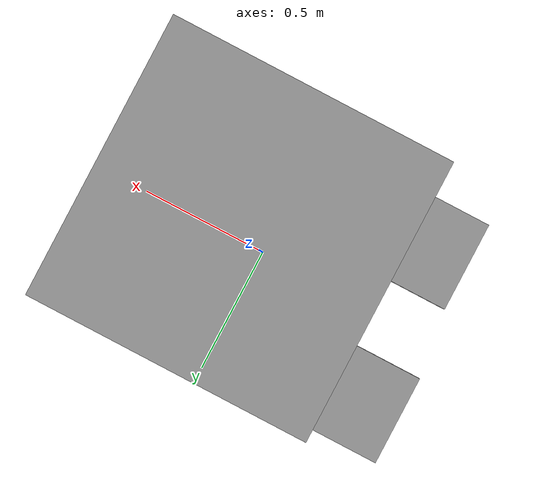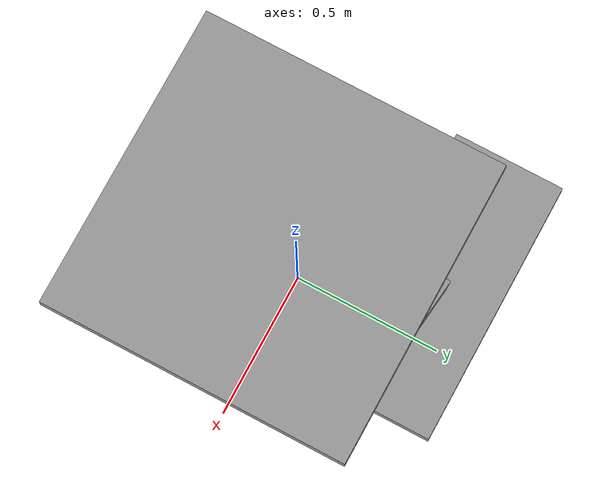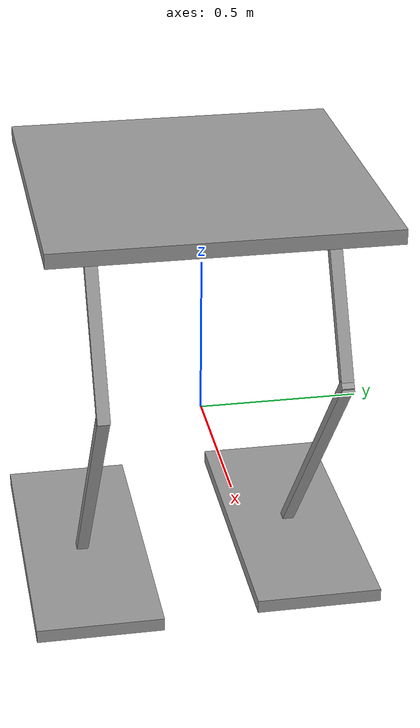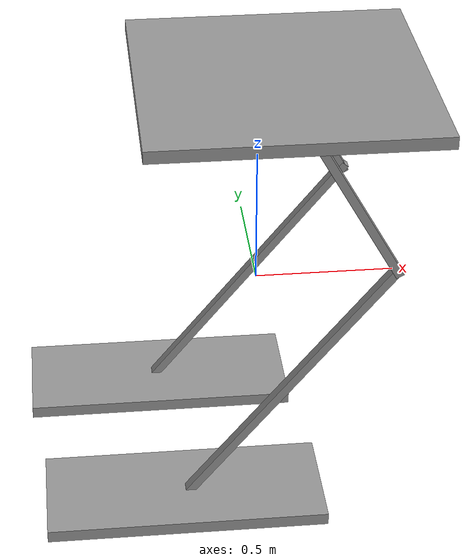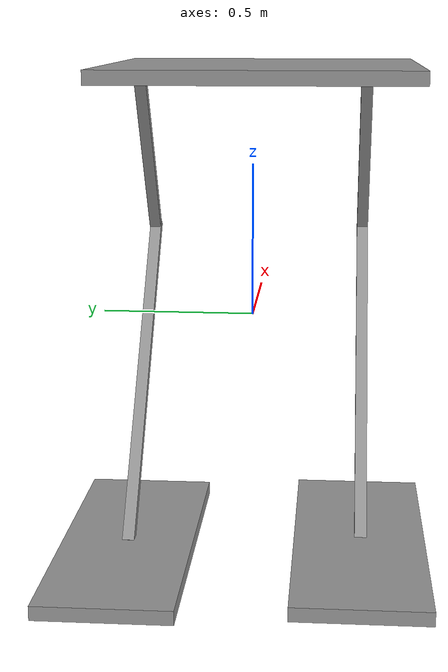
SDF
<?xml version='1.0'?>
<sdf version='1.6'>
  <model name='two_legged'>
    <link name='link_0'>
      <inertial>
        <mass>0.0442738</mass>
        <inertia>
          <ixx>0.00369672</ixx>
          <ixy>0</ixy>
          <ixz>0</ixz>
          <iyy>0.00369672</iyy>
          <iyz>0</iyz>
          <izz>0.00737897</izz>
        </inertia>
        <pose frame=''>0 0 0 0 -0 0</pose>
      </inertial>
      <pose frame=''>0.073454 -0.029564 0.794648 0 -0 0</pose>
      <visual name='visual'>
        <pose frame=''>0 0 0 0 -0 0</pose>
        <geometry>
          <box>
            <size>1 1 0.044271</size>
          </box>
        </geometry>
        <material>
          <lighting>1</lighting>
          <script>
            <uri>file://media/materials/scripts/gazebo.material</uri>
            <name>Gazebo/Grey</name>
          </script>
          <shader type='pixel'/>
          <emissive>0 0 0 1</emissive>
        </material>
        <transparency>0</transparency>
        <cast_shadows>1</cast_shadows>
      </visual>
      <collision name='collision'>
        <laser_retro>0</laser_retro>
        <max_contacts>10</max_contacts>
        <pose frame=''>0 0 0 0 -0 0</pose>
        <geometry>
          <box>
            <size>1 1 0.044271</size>
          </box>
        </geometry>
        <surface>
          <friction>
            <ode>
              <mu>1</mu>
              <mu2>1</mu2>
              <fdir1>0 0 0</fdir1>
              <slip1>0</slip1>
              <slip2>0</slip2>
            </ode>
            <torsional>
              <coefficient>1</coefficient>
              <patch_radius>0</patch_radius>
              <surface_radius>0</surface_radius>
              <use_patch_radius>1</use_patch_radius>
              <ode>
                <slip>0</slip>
              </ode>
            </torsional>
          </friction>
          <bounce>
            <restitution_coefficient>0</restitution_coefficient>
            <threshold>1e+06</threshold>
          </bounce>
          <contact>
            <collide_without_contact>0</collide_without_contact>
            <collide_without_contact_bitmask>1</collide_without_contact_bitmask>
            <collide_bitmask>1</collide_bitmask>
            <ode>
              <soft_cfm>0</soft_cfm>
              <soft_erp>0.2</soft_erp>
              <kp>1e+13</kp>
              <kd>1</kd>
              <max_vel>0.01</max_vel>
              <min_depth>0</min_depth>
            </ode>
            <bullet>
              <split_impulse>1</split_impulse>
              <split_impulse_penetration_threshold>-0.01</split_impulse_penetration_threshold>
              <soft_cfm>0</soft_cfm>
              <soft_erp>0.2</soft_erp>
              <kp>1e+13</kp>
              <kd>1</kd>
            </bullet>
          </contact>
        </surface>
      </collision>
    </link>
    <link name='link_0_clone'>
      <inertial>
        <mass>0.0184083</mass>
        <inertia>
          <ixx>0.000268196</ixx>
          <ixy>0</ixy>
          <ixz>0</ixz>
          <iyy>0.00153703</iyy>
          <iyz>0</iyz>
          <izz>0.00179921</izz>
        </inertia>
        <pose frame=''>0 0 0 0 -0 0</pose>
      </inertial>
      <pose frame=''>-0.298186 -0.361094 -0.683213 0 -0 0</pose>
      <visual name='visual'>
        <pose frame=''>0 0 0 0 -0 0</pose>
        <geometry>
          <box>
            <size>1 0.415778 0.044271</size>
          </box>
        </geometry>
        <material>
          <lighting>1</lighting>
          <script>
            <uri>file://media/materials/scripts/gazebo.material</uri>
            <name>Gazebo/Grey</name>
          </script>
          <shader type='pixel'/>
          <emissive>0 0 0 1</emissive>
        </material>
        <transparency>0</transparency>
        <cast_shadows>1</cast_shadows>
      </visual>
      <collision name='collision'>
        <laser_retro>0</laser_retro>
        <max_contacts>10</max_contacts>
        <pose frame=''>0 0 0 0 -0 0</pose>
        <geometry>
          <box>
            <size>1 0.415778 0.044271</size>
          </box>
        </geometry>
        <surface>
          <friction>
            <ode>
              <mu>1</mu>
              <mu2>1</mu2>
              <fdir1>0 0 0</fdir1>
              <slip1>0</slip1>
              <slip2>0</slip2>
            </ode>
            <torsional>
              <coefficient>1</coefficient>
              <patch_radius>0</patch_radius>
              <surface_radius>0</surface_radius>
              <use_patch_radius>1</use_patch_radius>
              <ode>
                <slip>0</slip>
              </ode>
            </torsional>
          </friction>
          <bounce>
            <restitution_coefficient>0</restitution_coefficient>
            <threshold>1e+06</threshold>
          </bounce>
          <contact>
            <collide_without_contact>0</collide_without_contact>
            <collide_without_contact_bitmask>1</collide_without_contact_bitmask>
            <collide_bitmask>1</collide_bitmask>
            <ode>
              <soft_cfm>0</soft_cfm>
              <soft_erp>0.2</soft_erp>
              <kp>1e+13</kp>
              <kd>1</kd>
              <max_vel>0.01</max_vel>
              <min_depth>0</min_depth>
            </ode>
            <bullet>
              <split_impulse>1</split_impulse>
              <split_impulse_penetration_threshold>-0.01</split_impulse_penetration_threshold>
              <soft_cfm>0</soft_cfm>
              <soft_erp>0.2</soft_erp>
              <kp>1e+13</kp>
              <kd>1</kd>
            </bullet>
          </contact>
        </surface>
      </collision>
    </link>
    <link name='link_0_clone_clone'>
      <inertial>
        <mass>0.0184083</mass>
        <inertia>
          <ixx>0.000268196</ixx>
          <ixy>0</ixy>
          <ixz>0</ixz>
          <iyy>0.00153703</iyy>
          <iyz>0</iyz>
          <izz>0.00179921</izz>
        </inertia>
        <pose frame=''>0 0 0 0 -0 0</pose>
      </inertial>
      <pose frame=''>-0.343944 0.373874 -0.683714 0 -0 0</pose>
      <visual name='visual'>
        <pose frame=''>0 0 0 0 -0 0</pose>
        <geometry>
          <box>
            <size>1 0.415778 0.044271</size>
          </box>
        </geometry>
        <material>
          <lighting>1</lighting>
          <script>
            <uri>file://media/materials/scripts/gazebo.material</uri>
            <name>Gazebo/Grey</name>
          </script>
          <shader type='pixel'/>
          <emissive>0 0 0 1</emissive>
        </material>
        <transparency>0</transparency>
        <cast_shadows>1</cast_shadows>
      </visual>
      <collision name='collision'>
        <laser_retro>0</laser_retro>
        <max_contacts>10</max_contacts>
        <pose frame=''>0 0 0 0 -0 0</pose>
        <geometry>
          <box>
            <size>1 0.415778 0.044271</size>
          </box>
        </geometry>
        <surface>
          <friction>
            <ode>
              <mu>1</mu>
              <mu2>1</mu2>
              <fdir1>0 0 0</fdir1>
              <slip1>0</slip1>
              <slip2>0</slip2>
            </ode>
            <torsional>
              <coefficient>1</coefficient>
              <patch_radius>0</patch_radius>
              <surface_radius>0</surface_radius>
              <use_patch_radius>1</use_patch_radius>
              <ode>
                <slip>0</slip>
              </ode>
            </torsional>
          </friction>
          <bounce>
            <restitution_coefficient>0</restitution_coefficient>
            <threshold>1e+06</threshold>
          </bounce>
          <contact>
            <collide_without_contact>0</collide_without_contact>
            <collide_without_contact_bitmask>1</collide_without_contact_bitmask>
            <collide_bitmask>1</collide_bitmask>
            <ode>
              <soft_cfm>0</soft_cfm>
              <soft_erp>0.2</soft_erp>
              <kp>1e+13</kp>
              <kd>1</kd>
              <max_vel>0.01</max_vel>
              <min_depth>0</min_depth>
            </ode>
            <bullet>
              <split_impulse>1</split_impulse>
              <split_impulse_penetration_threshold>-0.01</split_impulse_penetration_threshold>
              <soft_cfm>0</soft_cfm>
              <soft_erp>0.2</soft_erp>
              <kp>1e+13</kp>
              <kd>1</kd>
            </bullet>
          </contact>
        </surface>
      </collision>
    </link>
    <link name='link_2'>
      <inertial>
        <mass>0.000787082</mass>
        <inertia>
          <ixx>3.04398e-05</ixx>
          <ixy>0</ixy>
          <ixz>0</ixz>
          <iyy>3.04023e-05</iyy>
          <iyz>0</iyz>
          <izz>1.57027e-07</izz>
        </inertia>
        <pose frame=''>0 0 0 0 -0 0</pose>
      </inertial>
      <pose frame=''>0.207317 0.374796 0.508768 0 -0.51852 0</pose>
      <visual name='visual'>
        <pose frame=''>0 0 0 0 -0 0</pose>
        <geometry>
          <box>
            <size>0.030184 0.03851 0.680153</size>
          </box>
        </geometry>
        <material>
          <lighting>1</lighting>
          <script>
            <uri>file://media/materials/scripts/gazebo.material</uri>
            <name>Gazebo/Grey</name>
          </script>
          <shader type='pixel'/>
          <emissive>0 0 0 1</emissive>
        </material>
        <transparency>0</transparency>
        <cast_shadows>1</cast_shadows>
      </visual>
      <collision name='collision'>
        <laser_retro>0</laser_retro>
        <max_contacts>10</max_contacts>
        <pose frame=''>0 0 0 0 -0 0</pose>
        <geometry>
          <box>
            <size>0.030184 0.03851 0.680153</size>
          </box>
        </geometry>
        <surface>
          <friction>
            <ode>
              <mu>1</mu>
              <mu2>1</mu2>
              <fdir1>0 0 0</fdir1>
              <slip1>0</slip1>
              <slip2>0</slip2>
            </ode>
            <torsional>
              <coefficient>1</coefficient>
              <patch_radius>0</patch_radius>
              <surface_radius>0</surface_radius>
              <use_patch_radius>1</use_patch_radius>
              <ode>
                <slip>0</slip>
              </ode>
            </torsional>
          </friction>
          <bounce>
            <restitution_coefficient>0</restitution_coefficient>
            <threshold>1e+06</threshold>
          </bounce>
          <contact>
            <collide_without_contact>0</collide_without_contact>
            <collide_without_contact_bitmask>1</collide_without_contact_bitmask>
            <collide_bitmask>1</collide_bitmask>
            <ode>
              <soft_cfm>0</soft_cfm>
              <soft_erp>0.2</soft_erp>
              <kp>1e+13</kp>
              <kd>1</kd>
              <max_vel>0.01</max_vel>
              <min_depth>0</min_depth>
            </ode>
            <bullet>
              <split_impulse>1</split_impulse>
              <split_impulse_penetration_threshold>-0.01</split_impulse_penetration_threshold>
              <soft_cfm>0</soft_cfm>
              <soft_erp>0.2</soft_erp>
              <kp>1e+13</kp>
              <kd>1</kd>
            </bullet>
          </contact>
        </surface>
      </collision>
    </link>
    <link name='link_2_clone'>
      <inertial>
        <mass>0.000787082</mass>
        <inertia>
          <ixx>3.04398e-05</ixx>
          <ixy>0</ixy>
          <ixz>0</ixz>
          <iyy>3.04023e-05</iyy>
          <iyz>0</iyz>
          <izz>1.57027e-07</izz>
        </inertia>
        <pose frame=''>0 0 0 0 -0 0</pose>
      </inertial>
      <pose frame=''>0.278534 -0.365944 0.506585 0 -0.51852 0</pose>
      <visual name='visual'>
        <pose frame=''>0 0 0 0 -0 0</pose>
        <geometry>
          <box>
            <size>0.030184 0.03851 0.680153</size>
          </box>
        </geometry>
        <material>
          <lighting>1</lighting>
          <script>
            <uri>file://media/materials/scripts/gazebo.material</uri>
            <name>Gazebo/Grey</name>
          </script>
          <shader type='pixel'/>
          <emissive>0 0 0 1</emissive>
        </material>
        <transparency>0</transparency>
        <cast_shadows>1</cast_shadows>
      </visual>
      <collision name='collision'>
        <laser_retro>0</laser_retro>
        <max_contacts>10</max_contacts>
        <pose frame=''>0 0 0 0 -0 0</pose>
        <geometry>
          <box>
            <size>0.030184 0.03851 0.680153</size>
          </box>
        </geometry>
        <surface>
          <friction>
            <ode>
              <mu>1</mu>
              <mu2>1</mu2>
              <fdir1>0 0 0</fdir1>
              <slip1>0</slip1>
              <slip2>0</slip2>
            </ode>
            <torsional>
              <coefficient>1</coefficient>
              <patch_radius>0</patch_radius>
              <surface_radius>0</surface_radius>
              <use_patch_radius>1</use_patch_radius>
              <ode>
                <slip>0</slip>
              </ode>
            </torsional>
          </friction>
          <bounce>
            <restitution_coefficient>0</restitution_coefficient>
            <threshold>1e+06</threshold>
          </bounce>
          <contact>
            <collide_without_contact>0</collide_without_contact>
            <collide_without_contact_bitmask>1</collide_without_contact_bitmask>
            <collide_bitmask>1</collide_bitmask>
            <ode>
              <soft_cfm>0</soft_cfm>
              <soft_erp>0.2</soft_erp>
              <kp>1e+13</kp>
              <kd>1</kd>
              <max_vel>0.01</max_vel>
              <min_depth>0</min_depth>
            </ode>
            <bullet>
              <split_impulse>1</split_impulse>
              <split_impulse_penetration_threshold>-0.01</split_impulse_penetration_threshold>
              <soft_cfm>0</soft_cfm>
              <soft_erp>0.2</soft_erp>
              <kp>1e+13</kp>
              <kd>1</kd>
            </bullet>
          </contact>
        </surface>
      </collision>
    </link>
    <link name='link_2_clone_clone'>
      <inertial>
        <mass>0.00135713</mass>
        <inertia>
          <ixx>0.000155711</ixx>
          <ixy>0</ixy>
          <ixz>0</ixz>
          <iyy>0.000155647</iyy>
          <iyz>0</iyz>
          <izz>2.70758e-07</izz>
        </inertia>
        <pose frame=''>0 0 0 0 -0 0</pose>
      </inertial>
      <pose frame=''>0.072134 -0.365942 -0.229783 0 0.676585 0</pose>
      <visual name='visual'>
        <pose frame=''>0 0 0 0 -0 0</pose>
        <geometry>
          <box>
            <size>0.030184 0.03851 1.17275</size>
          </box>
        </geometry>
        <material>
          <lighting>1</lighting>
          <script>
            <uri>file://media/materials/scripts/gazebo.material</uri>
            <name>Gazebo/Grey</name>
          </script>
          <shader type='pixel'/>
          <emissive>0 0 0 1</emissive>
        </material>
        <transparency>0</transparency>
        <cast_shadows>1</cast_shadows>
      </visual>
      <collision name='collision'>
        <laser_retro>0</laser_retro>
        <max_contacts>10</max_contacts>
        <pose frame=''>0 0 0 0 -0 0</pose>
        <geometry>
          <box>
            <size>0.030184 0.03851 1.17275</size>
          </box>
        </geometry>
        <surface>
          <friction>
            <ode>
              <mu>1</mu>
              <mu2>1</mu2>
              <fdir1>0 0 0</fdir1>
              <slip1>0</slip1>
              <slip2>0</slip2>
            </ode>
            <torsional>
              <coefficient>1</coefficient>
              <patch_radius>0</patch_radius>
              <surface_radius>0</surface_radius>
              <use_patch_radius>1</use_patch_radius>
              <ode>
                <slip>0</slip>
              </ode>
            </torsional>
          </friction>
          <bounce>
            <restitution_coefficient>0</restitution_coefficient>
            <threshold>1e+06</threshold>
          </bounce>
          <contact>
            <collide_without_contact>0</collide_without_contact>
            <collide_without_contact_bitmask>1</collide_without_contact_bitmask>
            <collide_bitmask>1</collide_bitmask>
            <ode>
              <soft_cfm>0</soft_cfm>
              <soft_erp>0.2</soft_erp>
              <kp>1e+13</kp>
              <kd>1</kd>
              <max_vel>0.01</max_vel>
              <min_depth>0</min_depth>
            </ode>
            <bullet>
              <split_impulse>1</split_impulse>
              <split_impulse_penetration_threshold>-0.01</split_impulse_penetration_threshold>
              <soft_cfm>0</soft_cfm>
              <soft_erp>0.2</soft_erp>
              <kp>1e+13</kp>
              <kd>1</kd>
            </bullet>
          </contact>
        </surface>
      </collision>
    </link>
    <link name='link_2_clone_clone_clone'>
      <inertial>
        <mass>0.00135713</mass>
        <inertia>
          <ixx>0.000155711</ixx>
          <ixy>0</ixy>
          <ixz>0</ixz>
          <iyy>0.000155647</iyy>
          <iyz>0</iyz>
          <izz>2.70758e-07</izz>
        </inertia>
        <pose frame=''>0 0 0 0 -0 0</pose>
      </inertial>
      <pose frame=''>0.010691 0.373874 -0.213294 0 0.676585 0</pose>
      <visual name='visual'>
        <pose frame=''>0 0 0 0 -0 0</pose>
        <geometry>
          <box>
            <size>0.030184 0.03851 1.17275</size>
          </box>
        </geometry>
        <material>
          <lighting>1</lighting>
          <script>
            <uri>file://media/materials/scripts/gazebo.material</uri>
            <name>Gazebo/Grey</name>
          </script>
          <shader type='pixel'/>
          <emissive>0 0 0 1</emissive>
        </material>
        <transparency>0</transparency>
        <cast_shadows>1</cast_shadows>
      </visual>
      <collision name='collision'>
        <laser_retro>0</laser_retro>
        <max_contacts>10</max_contacts>
        <pose frame=''>0 0 0 0 -0 0</pose>
        <geometry>
          <box>
            <size>0.030184 0.03851 1.17275</size>
          </box>
        </geometry>
        <surface>
          <friction>
            <ode>
              <mu>1</mu>
              <mu2>1</mu2>
              <fdir1>0 0 0</fdir1>
              <slip1>0</slip1>
              <slip2>0</slip2>
            </ode>
            <torsional>
              <coefficient>1</coefficient>
              <patch_radius>0</patch_radius>
              <surface_radius>0</surface_radius>
              <use_patch_radius>1</use_patch_radius>
              <ode>
                <slip>0</slip>
              </ode>
            </torsional>
          </friction>
          <bounce>
            <restitution_coefficient>0</restitution_coefficient>
            <threshold>1e+06</threshold>
          </bounce>
          <contact>
            <collide_without_contact>0</collide_without_contact>
            <collide_without_contact_bitmask>1</collide_without_contact_bitmask>
            <collide_bitmask>1</collide_bitmask>
            <ode>
              <soft_cfm>0</soft_cfm>
              <soft_erp>0.2</soft_erp>
              <kp>1e+13</kp>
              <kd>1</kd>
              <max_vel>0.01</max_vel>
              <min_depth>0</min_depth>
            </ode>
            <bullet>
              <split_impulse>1</split_impulse>
              <split_impulse_penetration_threshold>-0.01</split_impulse_penetration_threshold>
              <soft_cfm>0</soft_cfm>
              <soft_erp>0.2</soft_erp>
              <kp>1e+13</kp>
              <kd>1</kd>
            </bullet>
          </contact>
        </surface>
      </collision>
    </link>
    <joint name='link_0_JOINT_0' type='revolute'>
      <parent>link_0</parent>
      <child>link_2</child>
      <pose frame=''>0 0 0 0 -0 0</pose>
      <axis>
        <xyz>0 1 0</xyz>
        <use_parent_model_frame>0</use_parent_model_frame>
        <limit>
          <lower>-1.79769e+308</lower>
          <upper>1.79769e+308</upper>
          <effort>-1</effort>
          <velocity>-1</velocity>
        </limit>
        <dynamics>
          <spring_reference>0</spring_reference>
          <spring_stiffness>0</spring_stiffness>
          <damping>0</damping>
        </dynamics>
      </axis>
      <physics>
        <ode>
          <limit>
            <cfm>0</cfm>
            <erp>0.2</erp>
          </limit>
          <suspension>
            <cfm>0</cfm>
            <erp>0.2</erp>
          </suspension>
        </ode>
      </physics>
    </joint>
    <joint name='link_0_JOINT_1' type='revolute'>
      <parent>link_0</parent>
      <child>link_2_clone</child>
      <pose frame=''>0 0 0 0 -0 0</pose>
      <axis>
        <xyz>0 1 0</xyz>
        <use_parent_model_frame>0</use_parent_model_frame>
        <limit>
          <lower>-1.79769e+308</lower>
          <upper>1.79769e+308</upper>
          <effort>-1</effort>
          <velocity>-1</velocity>
        </limit>
        <dynamics>
          <spring_reference>0</spring_reference>
          <spring_stiffness>0</spring_stiffness>
          <damping>0</damping>
        </dynamics>
      </axis>
      <physics>
        <ode>
          <limit>
            <cfm>0</cfm>
            <erp>0.2</erp>
          </limit>
          <suspension>
            <cfm>0</cfm>
            <erp>0.2</erp>
          </suspension>
        </ode>
      </physics>
    </joint>
    <joint name='link_0_clone_JOINT_4' type='fixed'>
      <parent>link_0_clone</parent>
      <child>link_2_clone_clone</child>
      <pose frame=''>0 0 0 0 -0 0</pose>
      <physics>
        <ode>
          <limit>
            <cfm>0</cfm>
            <erp>0.2</erp>
          </limit>
          <suspension>
            <cfm>0</cfm>
            <erp>0.2</erp>
          </suspension>
        </ode>
      </physics>
    </joint>
    <joint name='link_0_clone_clone_JOINT_5' type='fixed'>
      <parent>link_0_clone_clone</parent>
      <child>link_2_clone_clone_clone</child>
      <pose frame=''>0 0 0 0 -0 0</pose>
      <physics>
        <ode>
          <limit>
            <cfm>0</cfm>
            <erp>0.2</erp>
          </limit>
          <suspension>
            <cfm>0</cfm>
            <erp>0.2</erp>
          </suspension>
        </ode>
      </physics>
    </joint>
    <joint name='link_2_JOINT_3' type='revolute'>
      <parent>link_2</parent>
      <child>link_2_clone_clone_clone</child>
      <pose frame=''>0 0 0 0 -0 0</pose>
      <axis>
        <xyz>0 1 0</xyz>
        <use_parent_model_frame>0</use_parent_model_frame>
        <limit>
          <lower>-1.79769e+308</lower>
          <upper>1.79769e+308</upper>
          <effort>-1</effort>
          <velocity>-1</velocity>
        </limit>
        <dynamics>
          <spring_reference>0</spring_reference>
          <spring_stiffness>0</spring_stiffness>
          <damping>0</damping>
        </dynamics>
      </axis>
      <physics>
        <ode>
          <limit>
            <cfm>0</cfm>
            <erp>0.2</erp>
          </limit>
          <suspension>
            <cfm>0</cfm>
            <erp>0.2</erp>
          </suspension>
        </ode>
      </physics>
    </joint>
    <joint name='link_2_clone_JOINT_2' type='revolute'>
      <parent>link_2_clone</parent>
      <child>link_2_clone_clone</child>
      <pose frame=''>0 0 0 0 -0 0</pose>
      <axis>
        <xyz>0 1 0</xyz>
        <use_parent_model_frame>0</use_parent_model_frame>
        <limit>
          <lower>-1.79769e+308</lower>
          <upper>1.79769e+308</upper>
          <effort>-1</effort>
          <velocity>-1</velocity>
        </limit>
        <dynamics>
          <spring_reference>0</spring_reference>
          <spring_stiffness>0</spring_stiffness>
          <damping>0</damping>
        </dynamics>
      </axis>
      <physics>
        <ode>
          <limit>
            <cfm>0</cfm>
            <erp>0.2</erp>
          </limit>
          <suspension>
            <cfm>0</cfm>
            <erp>0.2</erp>
          </suspension>
        </ode>
      </physics>
    </joint>
    <static>0</static>
    <allow_auto_disable>1</allow_auto_disable>
  </model>
</sdf>
